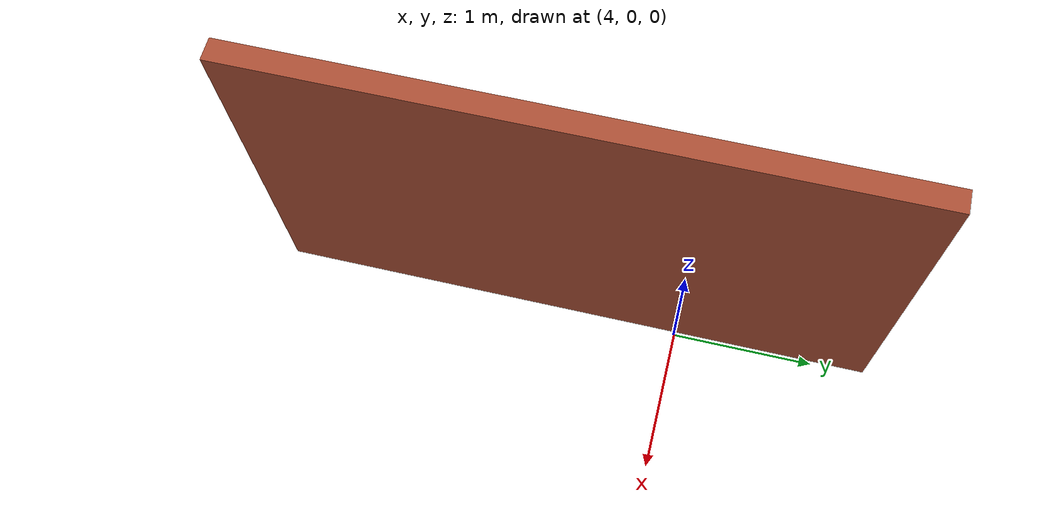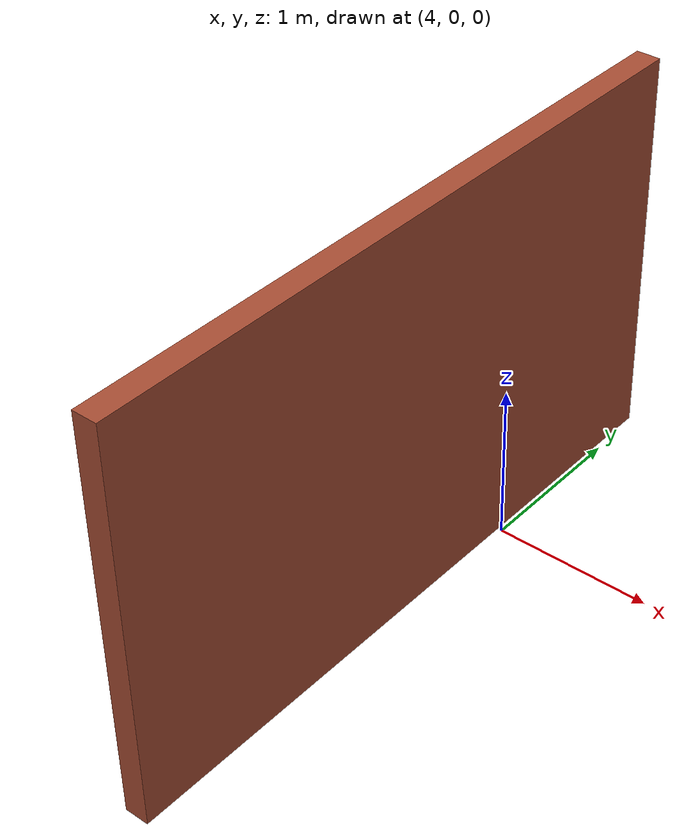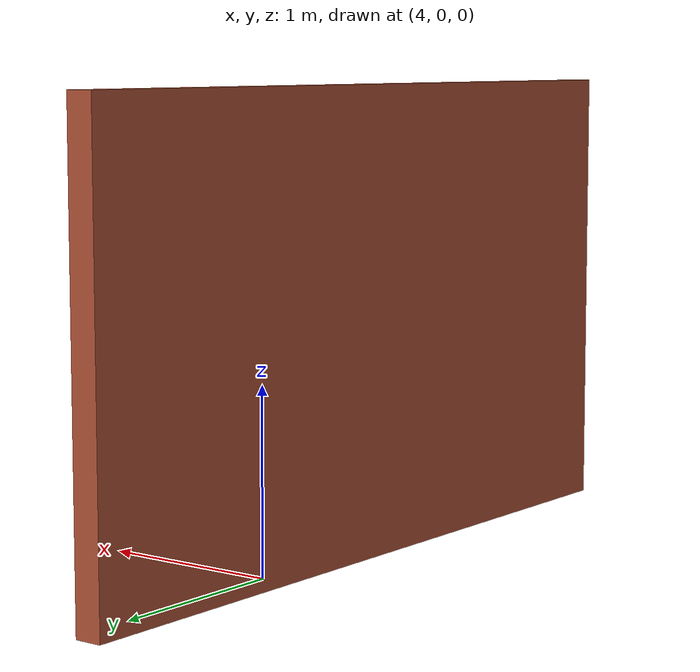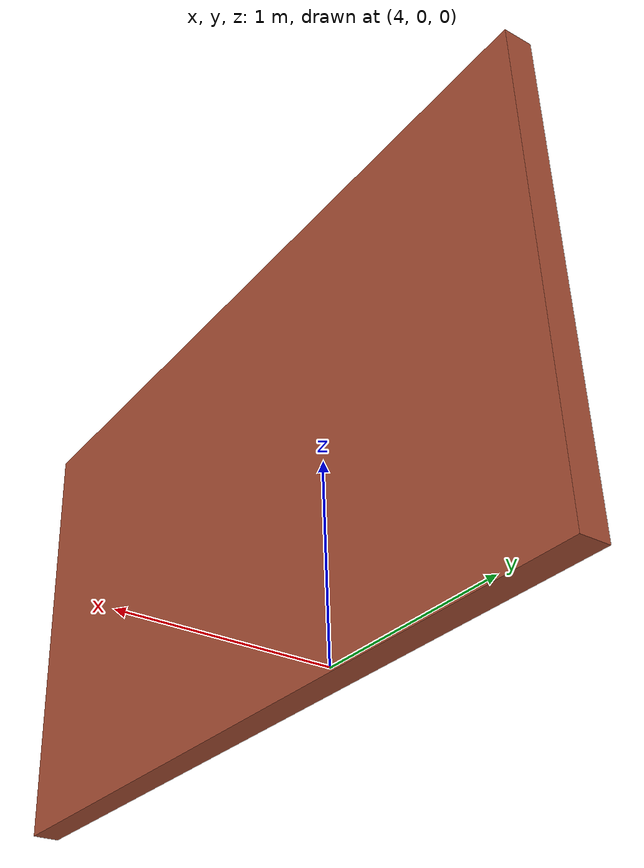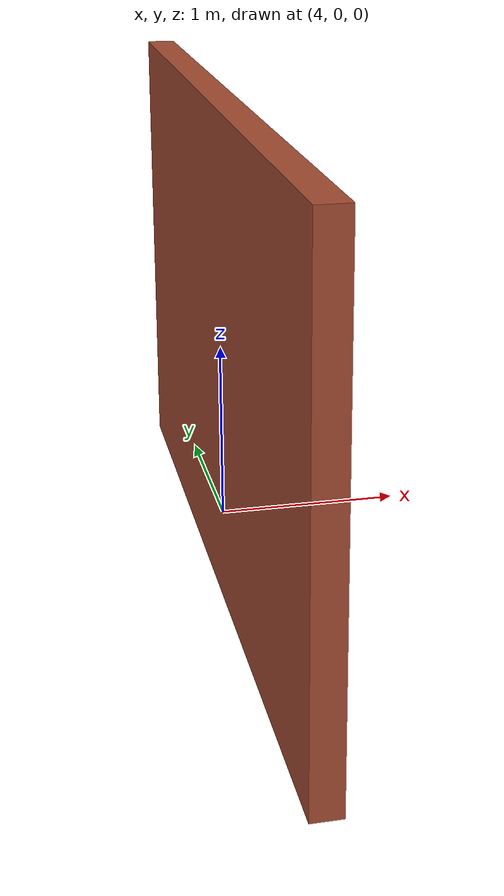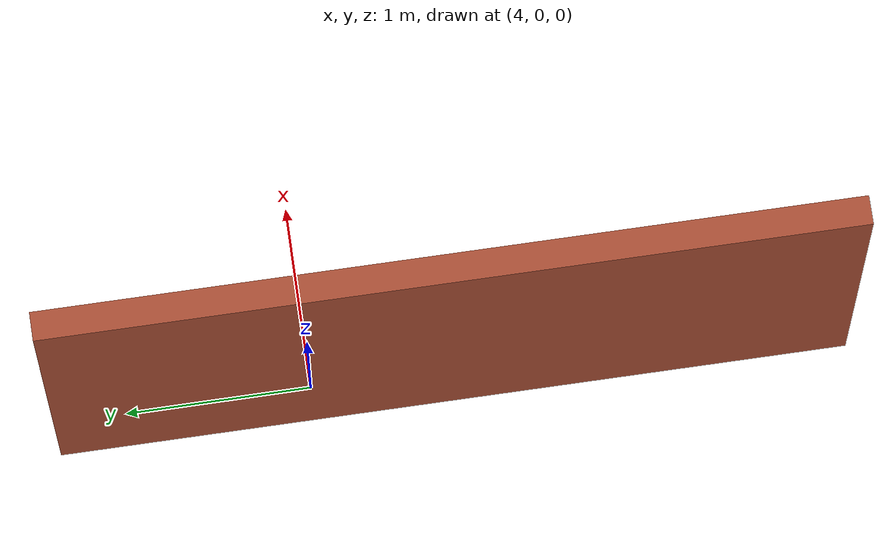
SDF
<?xml version='1.0'?>
<sdf version='1.7'>
  <model name='model'>
    <pose>1.9875 -0.75 0 0 -0 0</pose>
    <link name='Wall_0'>
      <collision name='Wall_0_Collision'>
        <geometry>
          <box>
            <size>4.25 0.15 2.5</size>
          </box>
        </geometry>
        <pose>0 0 1.25 0 -0 0</pose>
      </collision>
      <visual name='Wall_0_Visual'>
        <pose>0 0 1.25 0 -0 0</pose>
        <geometry>
          <box>
            <size>4.25 0.15 2.5</size>
          </box>
        </geometry>
        <material>
          <script>
            <uri>file://media/materials/scripts/gazebo.material</uri>
            <name>Gazebo/Bricks</name>
          </script>
          <ambient>1 1 1 1</ambient>
        </material>
        <meta>
          <layer>0</layer>
        </meta>
      </visual>
      <pose>1.9125 0 0 0 -0 1.5708</pose>
    </link>
    <static>1</static>
  </model>
</sdf>
